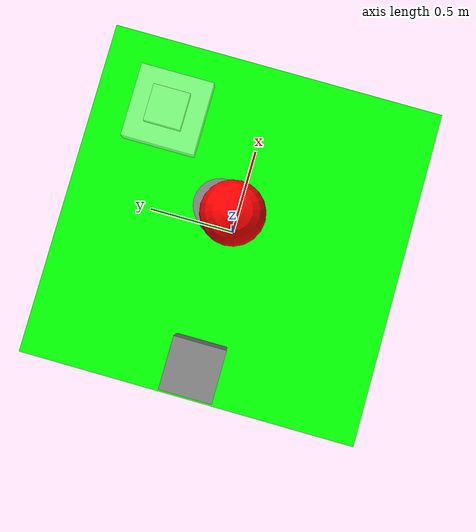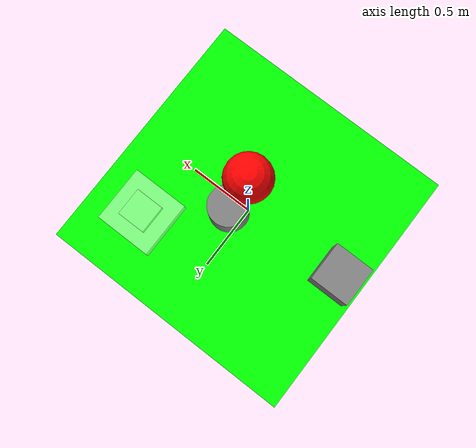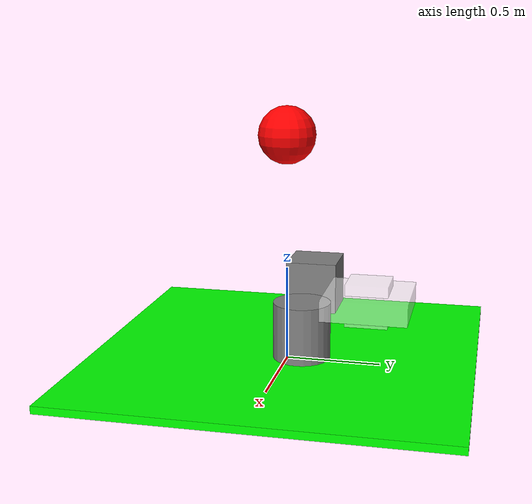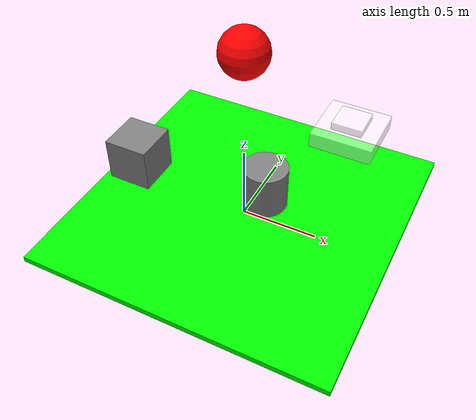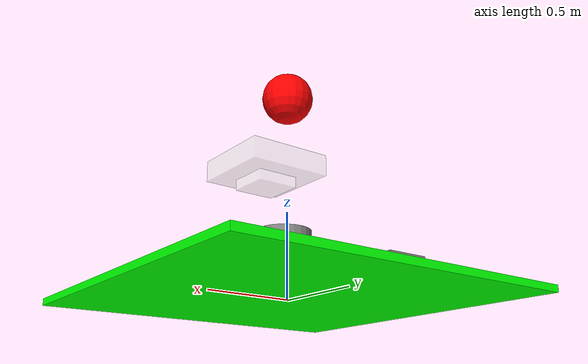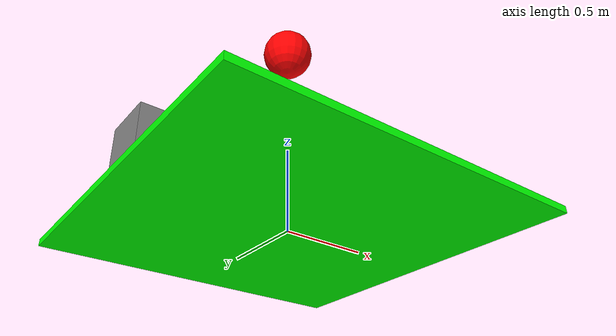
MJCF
<?xml version="1.0" encoding="utf-8" ?>
<mujoco>
    <option timestep="0.005" />
    <worldbody>
        <body name="robot" pos="0 0 1.2">
            <joint axis="1 0 0" damping="0.1" name="slide0" pos="0 0 0" type="slide" />
            <joint axis="0 1 0" damping="0.1" name="slide1" pos="0 0 0" type="slide" />
            <joint axis="0 0 1" damping="1" name="slide2" pos="0 0 0" type="slide" />
            <geom mass="1.0" pos="0 0 0" rgba="1 0 0 1" size="0.15" type="sphere"/>
            <camera euler="0 0 0" fovy="40" name="rgb" pos="0 0 2.5"> </camera>
        </body>
        <body mocap="true" name="mocap" pos="0.5 0.5 0.5">
            <geom conaffinity="0" contype="0" pos="0 0 0 " rgba="1.0 1.0 1.0 0.5" size="0.1 0.1 0.1" type="box"></geom>
            <geom conaffinity="0" contype="0" pos="0 0 0 " rgba="1.0 1.0 1.0 0.5" size="0.2 0.2 0.05" type="box"></geom>
        </body>
        <body name="cylinder" pos="0.1 0.1 0.2">
            <geom mass="1" size="0.15 0.15" type="cylinder"/>
            <joint axis="1 0 0" name="cylinder:slidex" type="slide"/>
            <joint axis="0 1 0" name="cylinder:slidey" type="slide"/>
        </body>
        <body name="box" pos="-0.8 0 0.2">
            <geom mass="0.1" size="0.15 0.15 0.15" type="box"/>
        </body>
        <body name="floor" pos="0 0 0.025">
            <geom condim="3" size="1.0 1.0 0.02" rgba="0 1 0 1" type="box"/>
        </body>
    </worldbody>
    <actuator>
        <motor gear="2000." joint="slide0"/>
        <motor gear="2000." joint="slide1"/>
    </actuator>
</mujoco>
